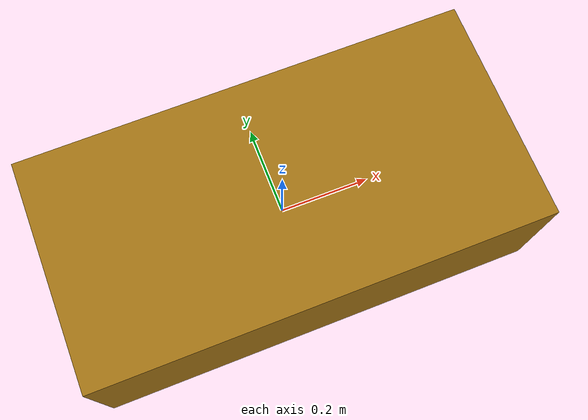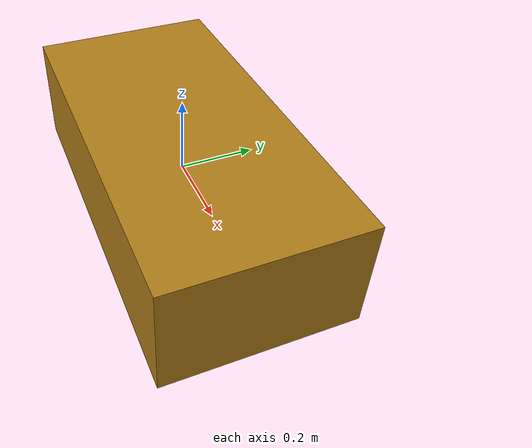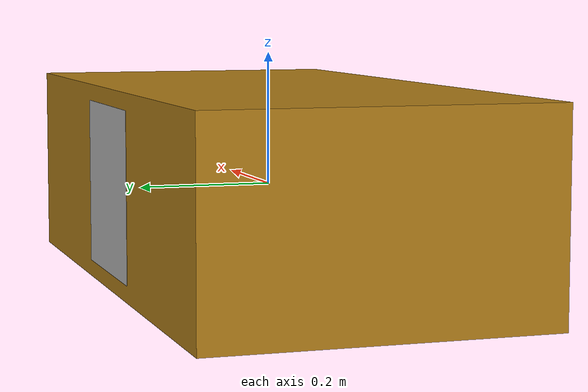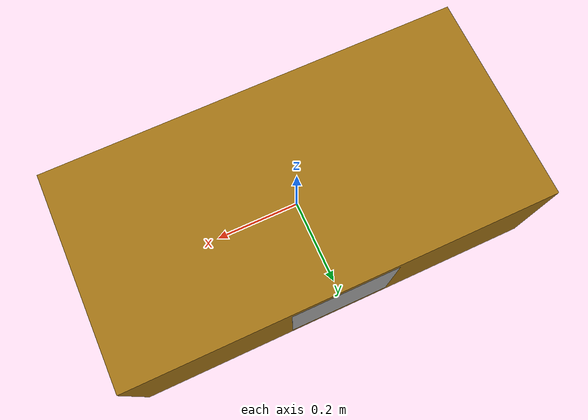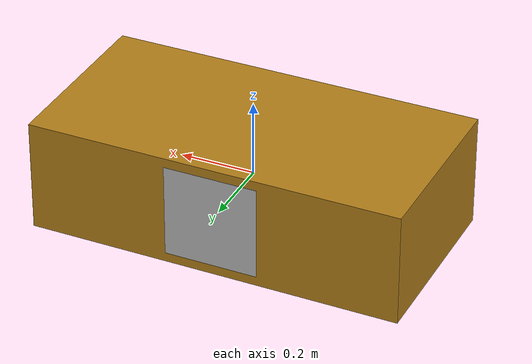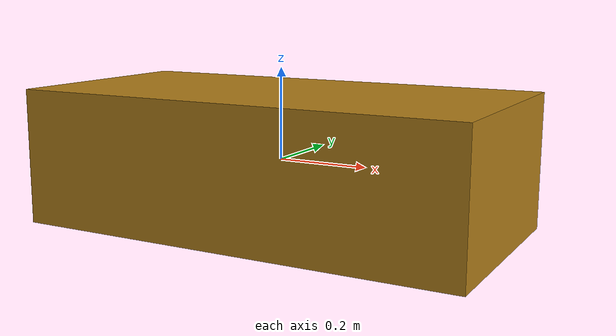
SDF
<?xml version="1.0"?>
<sdf version="1.4">
  <model name="env_exam_pick_surface">
    <static>true</static>

    <link name="link">
      <!-- Original pick surface inertial -->
      <inertial>
        <mass>1.0</mass>
        <inertia>
          <ixx>0.083</ixx>
          <ixy>0.0</ixy>
          <ixz>0.0</ixz>
          <iyy>0.083</iyy>
          <iyz>0.0</iyz>
          <izz>0.083</izz>
        </inertia>
      </inertial>

      <!-- Original pick surface collision -->
      <collision name="pick_surface_collision">
        <geometry>
          <box>
            <size>0.5 0.5 0.3</size>
          </box>
        </geometry>
      </collision>

      <!-- Original pick surface visual -->
      <visual name="pick_surface_visual">
        <material>
          <ambient>0.7 0.5 0.1 1</ambient>
          <diffuse>0.7 0.5 0.1 1</diffuse>
          <specular>0.5 0.5 0.5 1</specular>
          <emissive>0 0 0 1</emissive>
        </material>
        <geometry>
          <box>
            <size>1.0 0.5 0.3</size>
          </box>
        </geometry>
      </visual>

      <!-- ArUco marker mounted on one lateral side (+X face) -->
      <!-- Box visual for the marker -->
      <visual name="aruco_visual">
        <pose>0.0 0.25 0.0 1.5708 0 0</pose>
        <geometry>
          <box>
            <size>0.25 0.25 0.001</size>
          </box>
        </geometry>
        <material>
          <script>
	    <uri>model://aruco_marker_original_26/material/scripts</uri>
	    <uri>model://aruco_marker_original_26/material/textures</uri>
            <name>Aruco/aruco_marker_original_26</name>
          </script>
        </material>
      </visual>

      <!-- Collision for the marker -->
      <collision name="aruco_collision">
        <pose>0.5005 0 0.15 1.5708 0 0</pose>
        <geometry>
          <box>
            <size>0.25 0.25 0.001</size>
          </box>
        </geometry>
        <surface>
          <bounce/>
          <friction>
            <ode/>
          </friction>
          <contact>
            <ode/>
          </contact>
        </surface>
      </collision>

    </link>
  </model>
</sdf>
